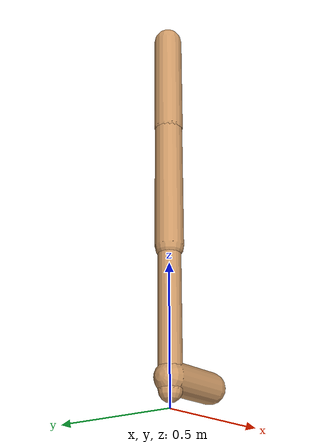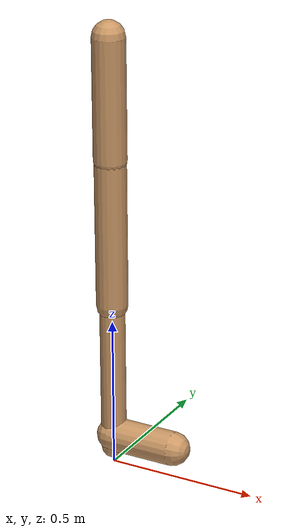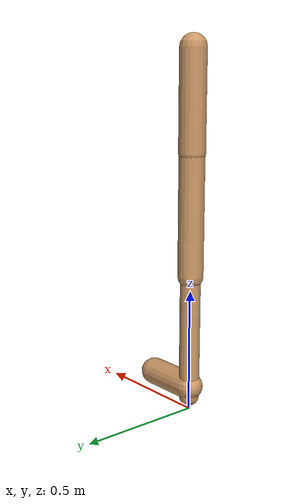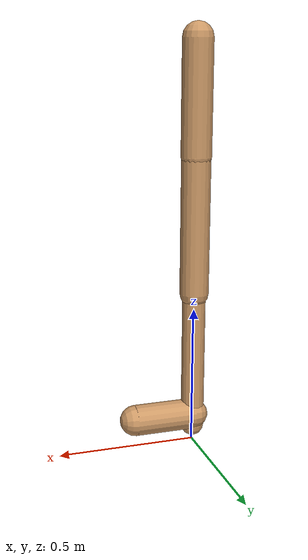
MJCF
<mujoco model="walker2d">
  <compiler angle="degree" coordinate="global" inertiafromgeom="true" />
  <default>
    <joint armature="0.01" damping=".1" limited="true" />
    <geom conaffinity="0" condim="3" contype="1" density="1000" friction="0.8 .1 .1" rgba="0.8 0.6 .4 1" />
  </default>
  <option integrator="RK4" timestep="0.002" />
  <worldbody>

    <body name="torso" pos="0 0 0.07834383466307723">
      <joint armature="0" axis="1 0 0" damping="0" limited="false" name="ignorex" pos="0 0 0" stiffness="0" type="slide" />
      <joint armature="0" axis="0 0 1" damping="0" limited="false" name="ignorez" pos="0 0 0" ref="1.25" stiffness="0" type="slide" />
      <joint armature="0" axis="0 1 0" damping="0" limited="false" name="ignorey" pos="0 0 0" stiffness="0" type="hinge" />
      <geom fromto="0 0 1.45 0 0 1.05" name="torso_geom" size="0.053534607091807684" type="capsule" />
      <body name="thigh">
        <joint axis="0 -1 0" name="thigh_joint" pos="0 0 1.05" range="-150 0" type="hinge" />
        <geom fromto="0.0 0.0 1.05 0.0 0.0 0.562889762528016" name="thigh_geom" size="0.05151212326655744" type="capsule" />
        <body name="leg" pos="0.0 0.0 -0.03711023747198394">
          <joint axis="0 -1 0" name="leg_joint" pos="0 0 0.6" range="-150 0" type="hinge" />
          <geom fromto="0.0 0.0 0.6 0.0 0.0 0.05876640280890673" name="leg_geom" size="0.04120969861324596" type="capsule" />
          <body name="foot" pos="0.0 0.0 -0.04123359719109328">
            <joint axis="0 -1 0" name="foot_joint" pos="0 0 0.1" range="-45 45" type="hinge" />
            <geom fromto="-0.0 0.0 0.1 0.21908718631598592 0.0 0.1" name="foot_geom" size="0.05566941189223241" type="capsule" />
          </body>
        </body>
      </body>

      <body name="thigh_left">
        <joint axis="0 -1 0" name="thigh_left_joint" pos="0 0 1.05" range="-150 0" type="hinge" />
        <geom fromto="0.0 0.0 1.05 0.0 0.0 0.562889762528016" name="thigh_left_geom" rgba=".7 .3 .6 1" size="0.05151212326655744" type="capsule" />
        <body name="leg_left" pos="0.0 0.0 -0.03711023747198394">
          <joint axis="0 -1 0" name="leg_left_joint" pos="0 0 0.6" range="-150 0" type="hinge" />
          <geom fromto="0.0 0.0 0.6 0.0 0.0 0.05876640280890673" name="leg_left_geom" rgba=".7 .3 .6 1" size="0.04120969861324596" type="capsule" />
          <body name="foot_left" pos="0.0 0.0 -0.04123359719109328">
            <joint axis="0 -1 0" name="foot_left_joint" pos="0 0 0.1" range="-45 45" type="hinge" />
            <geom fromto="-0.0 0.0 0.1 0.21908718631598592 0.0 0.1" name="foot_left_geom" rgba=".7 .3 .6 1" size="0.05566941189223241" type="capsule" />
          </body>
        </body>
      </body>
    </body>
  </worldbody>
  <actuator>

    <motor ctrllimited="true" ctrlrange="-1.0 1.0" gear="100" joint="thigh_joint" />
    <motor ctrllimited="true" ctrlrange="-1.0 1.0" gear="100" joint="leg_joint" />
    <motor ctrllimited="true" ctrlrange="-1.0 1.0" gear="100" joint="foot_joint" />
    <motor ctrllimited="true" ctrlrange="-1.0 1.0" gear="100" joint="thigh_left_joint" />
    <motor ctrllimited="true" ctrlrange="-1.0 1.0" gear="100" joint="leg_left_joint" />
    <motor ctrllimited="true" ctrlrange="-1.0 1.0" gear="100" joint="foot_left_joint" />

  </actuator>
</mujoco>
